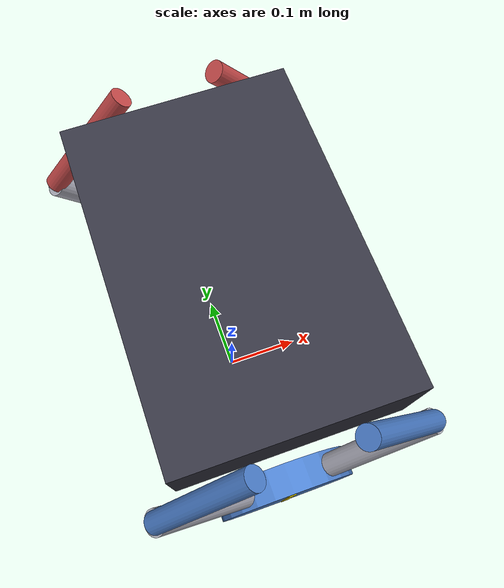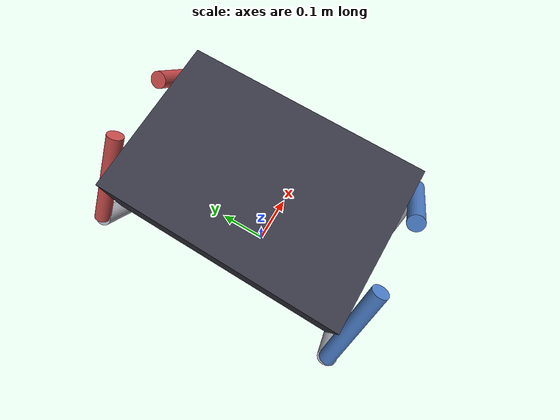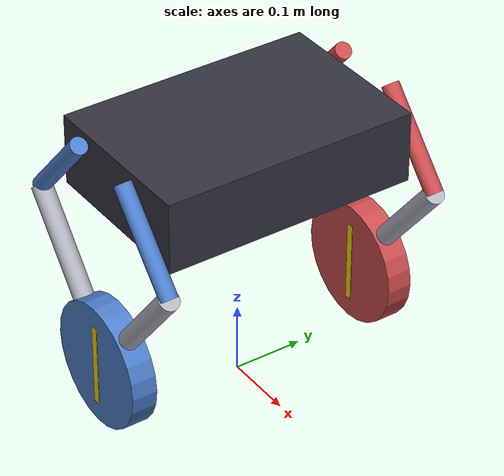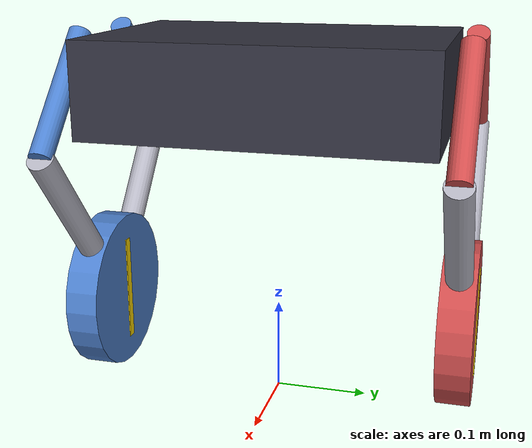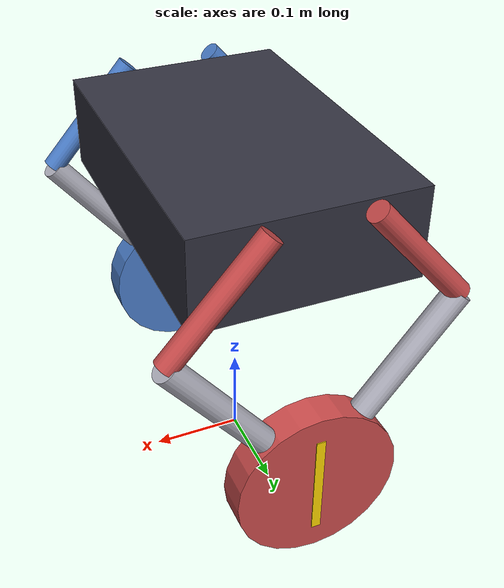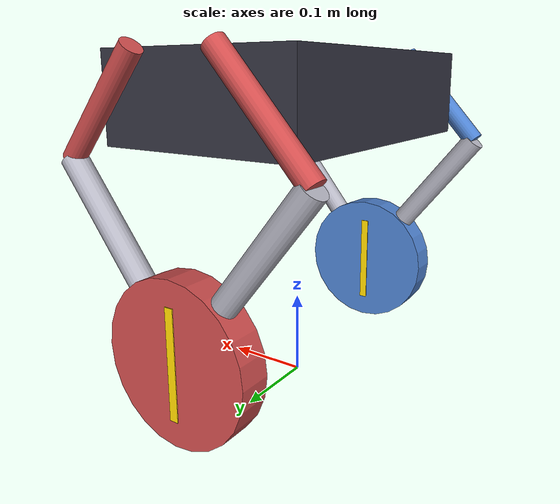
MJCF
<mujoco model="GBC486_rhombus">
  <default>
    <default class="touch">
        <geom contype="1" conaffinity="1" />
    </default>
    <default class="untouch">
        <geom contype="0" conaffinity="0" />
    </default>
  </default>
  <compiler angle="radian"/>

  <asset>
    <material name="base_mat" rgba="0.2 0.2 0.25 1" specular="0.5" shininess="0.5"/>
    <material name="arm_blue" rgba="0.3 0.5 0.8 1" specular="0.8" shininess="0.8"/>
    <material name="arm_red"  rgba="0.8 0.3 0.3 1" specular="0.8" shininess="0.8"/>
    <material name="joint_mat" rgba="0.7 0.7 0.75 1" specular="1.0" shininess="1.0"/>
    <material name="wheel_mat" rgba="0.15 0.15 0.2 1" specular="0.3" shininess="0.2"/>
  </asset>

  <worldbody>
    <body name="base" pos="0 0 0.30">
    <!-- "扣雷挖及悠打"，注释下面这行代码可以让车身悬浮在空中 -->
      <joint name="base_free" type="free"/>
      <site name="imu" type="box" size="0.002 0.002 0.002" rgba="1 1 0 1"/>
      <geom name="base_box" type="box" size="0.12 0.18 0.05" pos="0 0 0.05"
            material="base_mat" class="touch" mass="8.4"/>

      <!-- ============ 右腿（蓝色系），rear: AG → GH → wheel_right ============ -->
      <body name="AG" pos="-0.05 -0.20 0.10" quat="0.707105 0.707108 0 0">
        <joint name="jAG" pos="0 0 0" axis="0 0 1" range="-1.57 1.57"/>
        <!-- upper-rear 杆：从 hip 沿 (−0.0995, −0.11225, 0) 指向 knee G，长 0.15 -->
        <geom type="cylinder" fromto="0 0 0  -0.0995 -0.11225 0" size="0.012"
              material="arm_blue" class="untouch" mass="0.5"/>

        <body name="GH" pos="-0.0995 -0.11225 0">
          <joint name="jGH" pos="0 0 0" axis="0 0 1" range="-2.5 2.5"/>
          <!-- lower-rear 杆：从 knee 沿 (0.1495, −0.18775, 0) 指向 foot F，长 0.24 -->
          <geom type="cylinder" fromto="0 0 0  0.1495 -0.18775 0" size="0.014"
                material="joint_mat" class="touch" mass="1.0"/>
          <site name="GH-F" pos="0.1495 -0.18775 0" size="0.004" rgba="0 1 0 1"/>

          <body name="wheel_right" pos="0.1495 -0.18775 0">
            <joint name="jwheel_right" pos="0 0 0" axis="0 0 -1"/>
            <geom type="cylinder" size="0.088 0.018" material="arm_blue"
                  class="touch" mass="0.322"/>
            <geom type="box" size="0.005 0.06 0.019" pos="0 0 0"
                  rgba="1 0.85 0 1" class="untouch" mass="0.001"/>
          </body>
        </body>
      </body>

      <!-- ============ 右腿（蓝色系），front: AB → BE → F (闭环到 GH-F) ============ -->
      <body name="AB" pos="0.05 -0.20 0.10" quat="0.707105 0.707108 0 0">
        <joint name="jAB" pos="0 0 0" axis="0 0 1" range="-1.57 1.57"/>
        <!-- upper-front 杆：从 hip 沿 (0.0995, −0.11225, 0) 指向 knee B，长 0.15 -->
        <geom type="cylinder" fromto="0 0 0  0.0995 -0.11225 0" size="0.012"
              material="arm_blue" class="untouch" mass="0.5"/>

        <body name="BE" pos="0.0995 -0.11225 0">
          <joint name="jBE" pos="0 0 0" axis="0 0 1"/>
          <!-- lower-front 杆：从 knee 沿 (−0.1495, −0.18775, 0) 指向 foot F，长 0.24 -->
          <geom type="cylinder" fromto="0 0 0  -0.1495 -0.18775 0" size="0.014"
                material="joint_mat" class="touch" mass="1.0"/>
          <site name="BE-F" pos="-0.1495 -0.18775 0" size="0.004" rgba="0 1 0 1"/>
        </body>
      </body>

      <!-- ============ 左腿（红色系），rear: IO → OP → wheel_left ============ -->
      <body name="IO" pos="-0.05 0.20 0.10" quat="0.707105 0.707108 0 0">
        <joint name="jIO" pos="0 0 0" axis="0 0 -1" range="-1.57 1.57"/>
        <geom type="cylinder" fromto="0 0 0  -0.0995 -0.11225 0" size="0.012"
              material="arm_red" class="untouch" mass="0.5"/>

        <body name="OP" pos="-0.0995 -0.11225 0">
          <joint name="jOP" pos="0 0 0" axis="0 0 -1" range="-2.5 2.5"/>
          <geom type="cylinder" fromto="0 0 0  0.1495 -0.18775 0" size="0.014"
                material="joint_mat" class="touch" mass="1.0"/>
          <site name="OP-F" pos="0.1495 -0.18775 0" size="0.004" rgba="1 0 0 1"/>

          <body name="wheel_left" pos="0.1495 -0.18775 0">
            <joint name="jwheel_left" pos="0 0 0" axis="0 0 1"/>
            <geom type="cylinder" size="0.088 0.018" material="arm_red"
                  class="touch" mass="0.322"/>
            <geom type="box" size="0.005 0.06 0.019" pos="0 0 0"
                  rgba="1 0.85 0 1" class="untouch" mass="0.001"/>
          </body>
        </body>
      </body>

      <!-- ============ 左腿（红色系），front: IJ → JM → F (闭环到 OP-F) ============ -->
      <body name="IJ" pos="0.05 0.20 0.10" quat="0.707105 0.707108 0 0">
        <joint name="jIJ" pos="0 0 0" axis="0 0 -1" range="-1.57 1.57"/>
        <geom type="cylinder" fromto="0 0 0  0.0995 -0.11225 0" size="0.012"
              material="arm_red" class="untouch" mass="0.5"/>

        <body name="JM" pos="0.0995 -0.11225 0">
          <joint name="jJM" pos="0 0 0" axis="0 0 -1"/>
          <geom type="cylinder" fromto="0 0 0  -0.1495 -0.18775 0" size="0.014"
                material="joint_mat" class="touch" mass="1.0"/>
          <site name="JM-F" pos="-0.1495 -0.18775 0" size="0.004" rgba="1 0 0 1"/>
        </body>
      </body>
    </body>
  </worldbody>

  <equality>
    <!-- 闭环：上下两条支链在 foot/wheel 位置合拢 -->
    <connect name="right_F" site1="BE-F" site2="GH-F" solref="0.001 1" solimp="0.99 0.99 0.01 0.5 2"/>
    <connect name="left_F"  site1="JM-F" site2="OP-F" solref="0.001 1" solimp="0.99 0.99 0.01 0.5 2"/>
  </equality>

  <actuator>
    <general name="Right_front_joint_act" joint="jAB"          gainprm="1"  ctrlrange="-20 +20"/>
    <general name="Right_rear_joint_act"  joint="jAG"          gainprm="1"  ctrlrange="-20 +20"/>
    <general name="Left_front_joint_act"  joint="jIJ"          gainprm="1"  ctrlrange="-20 +20"/>
    <general name="Left_rear_joint_act"   joint="jIO"          gainprm="1"  ctrlrange="-20 +20"/>
    <general name="Right_Wheel_act"       joint="jwheel_right" gainprm="1"  ctrlrange="-4 +4"/>
    <general name="Left_Wheel_act"        joint="jwheel_left"  gainprm="-1" ctrlrange="-4 +4"/>
  </actuator>

  <sensor>
    <framequat name='orientation' objtype='site' objname='imu'/>
    <gyro      name='gyro'        site='imu'/>
    <jointpos joint="jwheel_right" name="Right_Wheel_pos"/>
    <jointpos joint="jwheel_left"  name="Left_Wheel_pos"/>
    <jointpos joint="jAB" name="Right_front_joint_pos"/>
    <jointpos joint="jAG" name="Right_rear_joint_pos"/>
    <jointpos joint="jIJ" name="Left_front_joint_pos"/>
    <jointpos joint="jIO" name="Left_rear_joint_pos"/>
  </sensor>
</mujoco>
